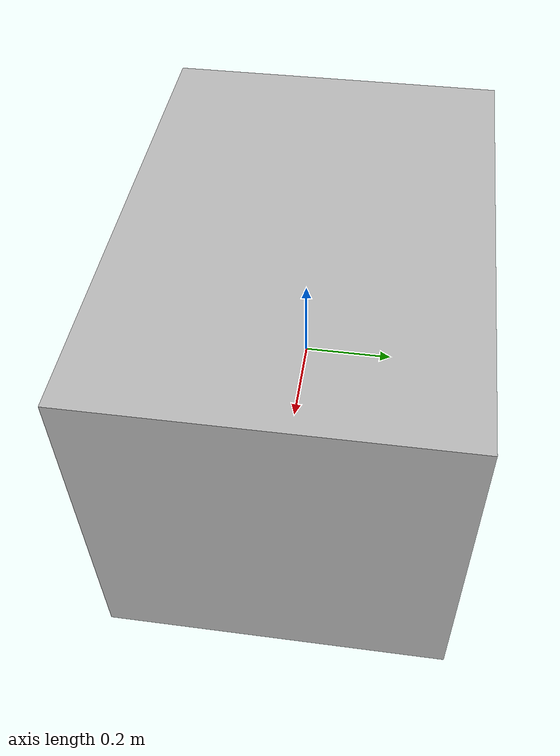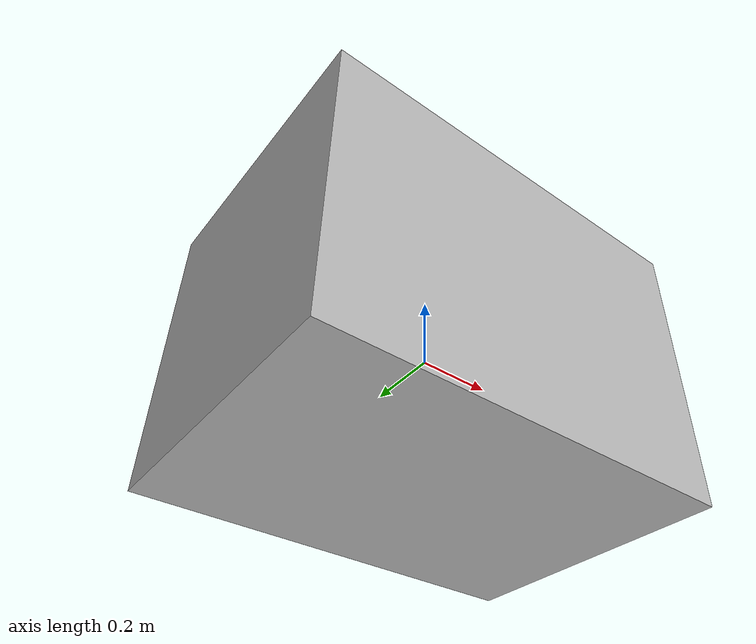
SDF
<sdf version="1.9">
<model name="rover2025" canonical_link="robot_root">
  <joint name="gps_locator" type="fixed">
    <pose relative_to="robot_root">0.09323 0.00000 0.65743 0.00000 0.00000 0.00000</pose>
    <parent>robot_root</parent>
    <child>gps</child>
    <axis>
      <xyz>0.00000 0.00000 1.00000</xyz>
    </axis>
    <axis2/>
  </joint>
  <joint name="robot_base_joint" type="fixed">
    <pose relative_to="robot_root">0.00000 0.00000 -0.00050 -0.00000 -0.00000 0.00000</pose>
    <parent>robot_root</parent>
    <child>robot_base</child>
    <axis/>
    <axis2/>
  </joint>
  <joint name="wheel_R_front" type="continuous">
    <pose relative_to="robot_wheel_l_front_actuator_link.008">-0.00000 -0.00000 -0.15555 -0.00000 -0.00000 0.00000</pose>
    <parent>robot_wheel_l_front_actuator_link.008</parent>
    <child>robot_wheel_l_front_actuator_link.009</child>
    <axis>
      <limit>
        <effort>0.00000</effort>
        <velocity>0.00000</velocity>
      </limit>
      <xyz>0.00000 -1.00000 0.00000</xyz>
    </axis>
    <axis2/>
  </joint>
  <joint name="imu_joint" type="fixed">
    <pose relative_to="robot_base">-0.00000 -0.00000 0.43039 -0.00000 0.00000 -0.00000</pose>
    <parent>robot_base</parent>
    <child>imu</child>
    <axis/>
    <axis2/>
  </joint>
  <joint name="rotate_L_back" type="revolute">
    <pose relative_to="robot_base">0.43705 -0.37063 0.32476 -0.00000 -0.00000 0.00000</pose>
    <parent>robot_base</parent>
    <child>robot_wheel_l_front_actuator_link.005</child>
    <axis>
      <limit>
        <lower>-2.96706</lower>
        <upper>2.96706</upper>
        <effort>0.00000</effort>
        <velocity>0.00000</velocity>
      </limit>
      <xyz>0.00000 0.00000 1.00000</xyz>
    </axis>
    <axis2/>
  </joint>
  <joint name="wheel_L_back" type="continuous">
    <pose relative_to="robot_wheel_l_front_actuator_link.005">-0.00000 0.00000 -0.15555 0.00000 -0.00000 -0.00000</pose>
    <parent>robot_wheel_l_front_actuator_link.005</parent>
    <child>robot_wheel_l_front_actuator_link.006</child>
    <axis>
      <limit>
        <effort>0.00000</effort>
        <velocity>0.00000</velocity>
      </limit>
      <xyz>0.00000 -1.00000 0.00000</xyz>
    </axis>
    <axis2/>
  </joint>
  <joint name="rotate_L_front" type="revolute">
    <pose relative_to="robot_base">-0.57753 -0.37063 0.32476 -0.00000 -0.00000 0.00000</pose>
    <parent>robot_base</parent>
    <child>robot_wheel_l_front_actuator_link.003</child>
    <axis>
      <limit>
        <lower>-2.96706</lower>
        <upper>2.96706</upper>
        <effort>0.00000</effort>
        <velocity>0.00000</velocity>
      </limit>
      <xyz>0.00000 0.00000 1.00000</xyz>
    </axis>
    <axis2/>
  </joint>
  <joint name="wheel_L_front" type="continuous">
    <pose relative_to="robot_wheel_l_front_actuator_link.003">-0.00000 0.00000 -0.15555 0.00000 -0.00000 -0.00000</pose>
    <parent>robot_wheel_l_front_actuator_link.003</parent>
    <child>robot_wheel_l_front_actuator_link.004</child>
    <axis>
      <limit>
        <effort>0.00000</effort>
        <velocity>0.00000</velocity>
      </limit>
      <xyz>0.00000 -1.00000 0.00000</xyz>
    </axis>
    <axis2/>
  </joint>
  <joint name="rotate_R_back" type="revolute">
    <pose relative_to="robot_base">0.43705 0.32063 0.32476 0.00000 -0.00000 -3.14159</pose>
    <parent>robot_base</parent>
    <child>robot_wheel_l_front_actuator_link.011</child>
    <axis>
      <limit>
        <lower>-2.96706</lower>
        <upper>2.96706</upper>
        <effort>0.00000</effort>
        <velocity>0.00000</velocity>
      </limit>
      <xyz>0.00000 0.00000 1.00000</xyz>
    </axis>
    <axis2/>
  </joint>
  <joint name="wheel_R_back" type="continuous">
    <pose relative_to="robot_wheel_l_front_actuator_link.011">0.00000 0.00000 -0.15555 -0.00000 -0.00000 0.00000</pose>
    <parent>robot_wheel_l_front_actuator_link.011</parent>
    <child>robot_wheel_l_front_actuator_link.012</child>
    <axis>
      <limit>
        <effort>0.00000</effort>
        <velocity>0.00000</velocity>
      </limit>
      <xyz>0.00000 -1.00000 0.00000</xyz>
    </axis>
    <axis2/>
  </joint>
  <joint name="rotate_R_front" type="revolute">
    <pose relative_to="robot_base">-0.57753 0.32063 0.32476 0.00000 -0.00000 -3.14159</pose>
    <parent>robot_base</parent>
    <child>robot_wheel_l_front_actuator_link.008</child>
    <axis>
      <limit>
        <lower>-2.96706</lower>
        <upper>2.96706</upper>
        <effort>0.00000</effort>
        <velocity>0.00000</velocity>
      </limit>
      <xyz>0.00000 0.00000 1.00000</xyz>
    </axis>
    <axis2/>
  </joint>
  <link name="robot_root">
    <collision name="body_collision">
      <pose relative_to="robot_root">0.00000 0.00000 0.00000 0.00000 0.00000 0.00000</pose>
      <geometry>
        <box>
          <size>5.69672 4.01711 2.92977</size>
        </box>
      </geometry>
      <surface>
        <contact/>
      </surface>
    </collision>
  </link>
  <link name="gps">
    <sensor name="gps.001" type="GPS">
      <always_on>1</always_on>
      <visualize>1</visualize>
      <enable_metrics>1</enable_metrics>
    </sensor>
  </link>
  <link name="robot_wheel_l_front_actuator_link.008">
    <inertial>
      <inertia>
        <ixx>0.00100</ixx>
        <ixy>0.00000</ixy>
        <ixz>0.00000</ixz>
        <iyy>0.00100</iyy>
        <iyz>-0.00000</iyz>
        <izz>0.00100</izz>
      </inertia>
      <pose relative_to="robot_wheel_l_front_actuator_link.008">0.00000 0.00000 -0.00000 0.00000 0.00000 0.00000</pose>
      <mass>1.00000</mass>
    </inertial>
    <visual name="bone-r-1">
      <pose relative_to="robot_wheel_l_front_actuator_link.008">-0.00377 0.00334 0.07903 0.00000 0.00000 1.57080</pose>
      <geometry>
        <mesh>
          <uri>../meshes/stl/Science.422.stl</uri>
          <scale>1 1 1</scale>
        </mesh>
      </geometry>
    </visual>
  </link>
  <link name="robot_wheel_l_front_actuator_link.009">
    <collision name="wheel-r-1_collision">
      <pose relative_to="robot_wheel_l_front_actuator_link.009">-0.57753 0.32063 -0.16871 0.00000 -0.00000 3.14159</pose>
      <geometry>
        <cylinder>
          <radius>0.78907</radius>
          <length>0.71014</length>
        </cylinder>
      </geometry>
      <surface>
        <contact/>
      </surface>
    </collision>
    <visual name="wheel-r-1">
      <pose relative_to="robot_wheel_l_front_actuator_link.009">-0.00334 0.00643 0.01418 0.00000 0.00000 1.57080</pose>
      <geometry>
        <cylinder>
          <radius>0.06742</radius>
          <length>0.32599</length>
        </cylinder>
      </geometry>
    </visual>
  </link>
  <link name="robot_base">
    <visual name="body">
      <pose relative_to="robot_base">-0.00000 -0.00000 0.00050 -0.00000 0.00000 -0.00000</pose>
      <geometry>
        <box>
          <size>1.09671 0.77336 0.78564</size>
        </box>
      </geometry>
    </visual>
  </link>
  <link name="imu">
    <sensor name="imu-sensor" type="imu">
      <always_on>1</always_on>
      <visualize>0</visualize>
      <enable_metrics>0</enable_metrics>
    </sensor>
  </link>
  <link name="robot_wheel_l_front_actuator_link.005">
    <inertial>
      <inertia>
        <ixx>0.00100</ixx>
        <ixy>-0.00000</ixy>
        <ixz>-0.00000</ixz>
        <iyy>0.00100</iyy>
        <iyz>0.00000</iyz>
        <izz>0.00100</izz>
      </inertia>
      <pose relative_to="robot_wheel_l_front_actuator_link.005">0.00000 0.00000 -0.00000 0.00000 0.00000 0.00000</pose>
      <mass>1.00000</mass>
    </inertial>
    <visual name="bone-l-2">
      <pose relative_to="robot_wheel_l_front_actuator_link.005">-0.00056 0.00243 0.06913 -0.00000 -0.00000 -1.57080</pose>
      <geometry>
        <mesh>
          <uri>../meshes/stl/Science.479.stl</uri>
          <scale>1 1 1</scale>
        </mesh>
      </geometry>
    </visual>
  </link>
  <link name="robot_wheel_l_front_actuator_link.006">
    <collision name="wheel-l-2_collision">
      <pose relative_to="robot_wheel_l_front_actuator_link.006">-0.43705 0.37063 -0.16871 0.00000 0.00000 0.00000</pose>
      <geometry>
        <cylinder>
          <radius>0.78567</radius>
          <length>0.93707</length>
        </cylinder>
      </geometry>
      <surface>
        <contact/>
      </surface>
    </collision>
    <visual name="wheel-l-2">
      <pose relative_to="robot_wheel_l_front_actuator_link.006">-0.00094 0.00902 0.00436 -0.00000 -0.00000 -1.57080</pose>
      <geometry>
        <cylinder>
          <radius>0.08897</radius>
          <length>0.32599</length>
        </cylinder>
      </geometry>
    </visual>
  </link>
  <link name="robot_wheel_l_front_actuator_link.003">
    <inertial>
      <inertia>
        <ixx>0.00100</ixx>
        <ixy>-0.00000</ixy>
        <ixz>-0.00000</ixz>
        <iyy>0.00100</iyy>
        <iyz>0.00000</iyz>
        <izz>0.00100</izz>
      </inertia>
      <pose relative_to="robot_wheel_l_front_actuator_link.003">0.00000 0.00000 -0.00000 0.00000 0.00000 0.00000</pose>
      <mass>1.00000</mass>
    </inertial>
    <visual name="bone-l-1">
      <pose relative_to="robot_wheel_l_front_actuator_link.003">0.00364 0.00244 0.07904 0.00000 -0.00000 1.57080</pose>
      <geometry>
        <mesh>
          <uri>../meshes/stl/Science.483.stl</uri>
          <scale>1 1 1</scale>
        </mesh>
      </geometry>
    </visual>
  </link>
  <link name="robot_wheel_l_front_actuator_link.004">
    <collision name="wheel-l-1_collision">
      <pose relative_to="robot_wheel_l_front_actuator_link.004">0.57753 0.37063 -0.16871 0.00000 0.00000 0.00000</pose>
      <geometry>
        <cylinder>
          <radius>0.78693</radius>
          <length>0.85322</length>
        </cylinder>
      </geometry>
      <surface>
        <contact/>
      </surface>
    </collision>
    <visual name="wheel-l-1">
      <pose relative_to="robot_wheel_l_front_actuator_link.004">0.00517 -0.00424 0.02084 0.00000 0.00000 1.57080</pose>
      <geometry>
        <cylinder>
          <radius>0.07091</radius>
          <length>0.32602</length>
        </cylinder>
      </geometry>
    </visual>
  </link>
  <link name="robot_wheel_l_front_actuator_link.011">
    <inertial>
      <inertia>
        <ixx>0.00100</ixx>
        <ixy>0.00000</ixy>
        <ixz>0.00000</ixz>
        <iyy>0.00100</iyy>
        <iyz>0.00000</iyz>
        <izz>0.00100</izz>
      </inertia>
      <pose relative_to="robot_wheel_l_front_actuator_link.011">0.00000 0.00000 -0.00000 0.00000 0.00000 0.00000</pose>
      <mass>1.00000</mass>
    </inertial>
    <visual name="bone-r-2">
      <pose relative_to="robot_wheel_l_front_actuator_link.011">0.00033 0.00341 0.06913 -0.00000 -0.00000 -1.57080</pose>
      <geometry>
        <mesh>
          <uri>../meshes/stl/Science.488.stl</uri>
          <scale>1 1 1</scale>
        </mesh>
      </geometry>
    </visual>
  </link>
  <link name="robot_wheel_l_front_actuator_link.012">
    <collision name="wheel-r-2_collision">
      <pose relative_to="robot_wheel_l_front_actuator_link.012">0.43705 0.32063 -0.16871 0.00000 -0.00000 3.14159</pose>
      <geometry>
        <cylinder>
          <radius>0.77344</radius>
          <length>0.78904</length>
        </cylinder>
      </geometry>
      <surface>
        <contact/>
      </surface>
    </collision>
    <visual name="wheel-r-2">
      <pose relative_to="robot_wheel_l_front_actuator_link.012">0.00013 0.01000 0.00436 -0.00000 0.00000 -1.57080</pose>
      <geometry>
        <cylinder>
          <radius>0.07492</radius>
          <length>0.32598</length>
        </cylinder>
      </geometry>
    </visual>
  </link>
</model>
</sdf>
